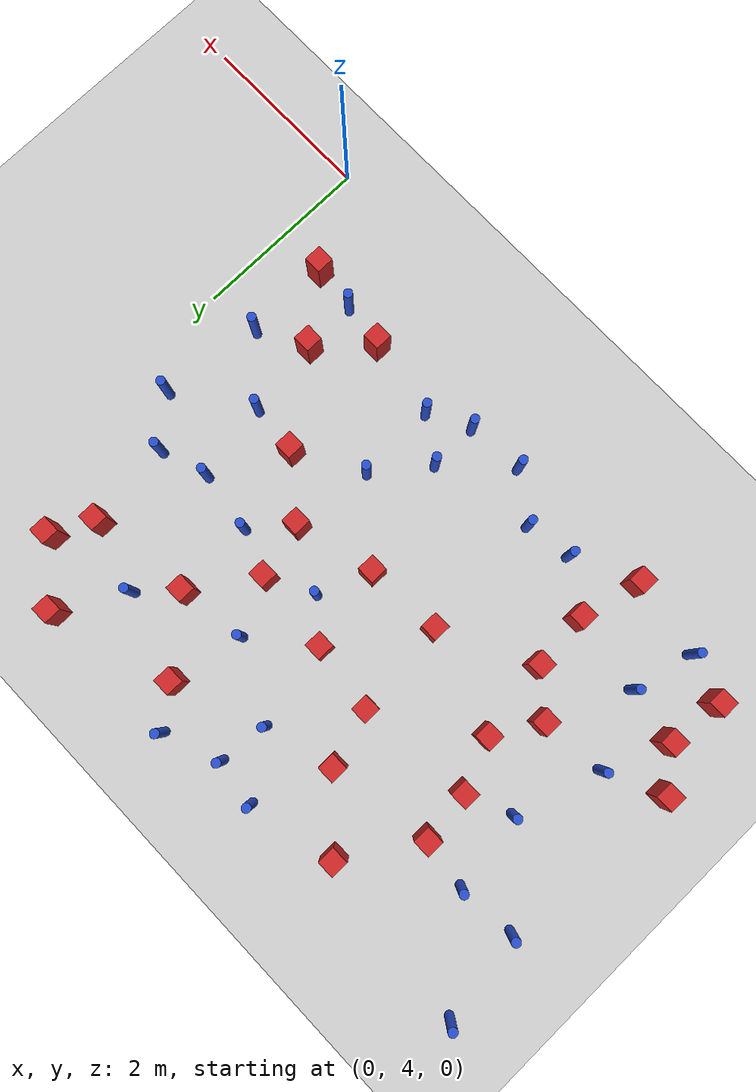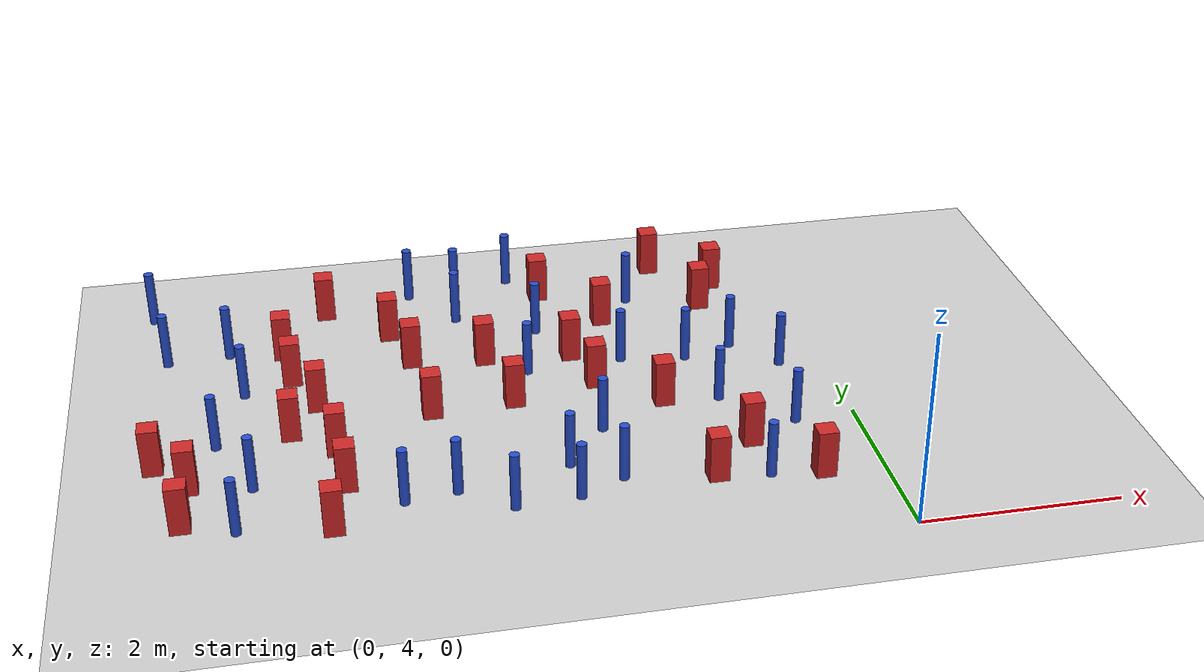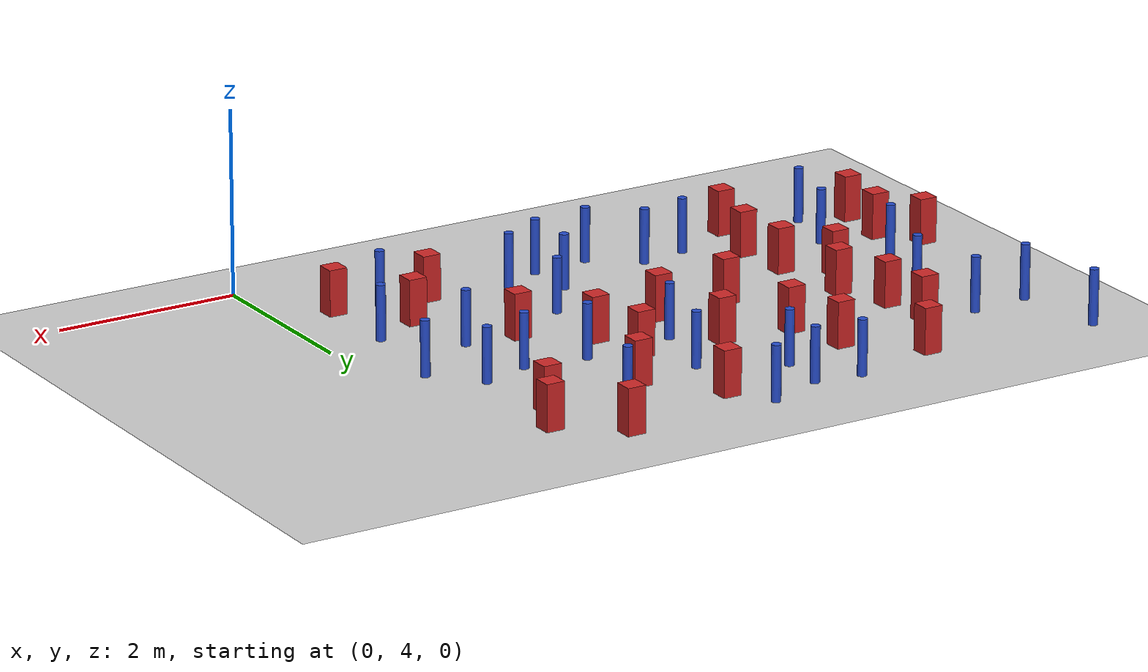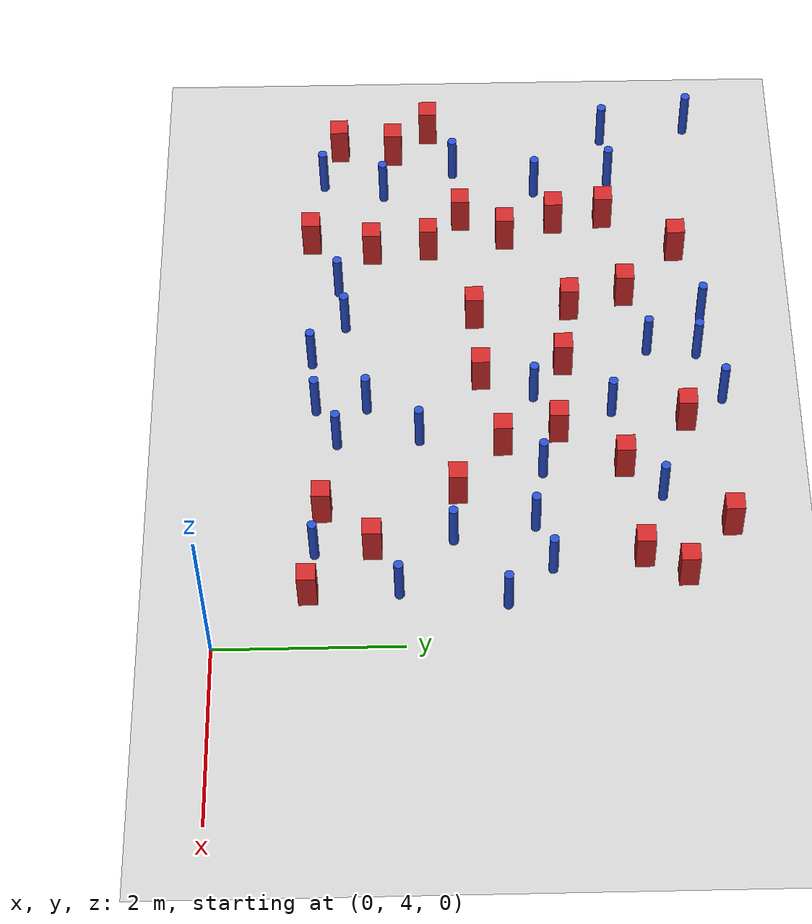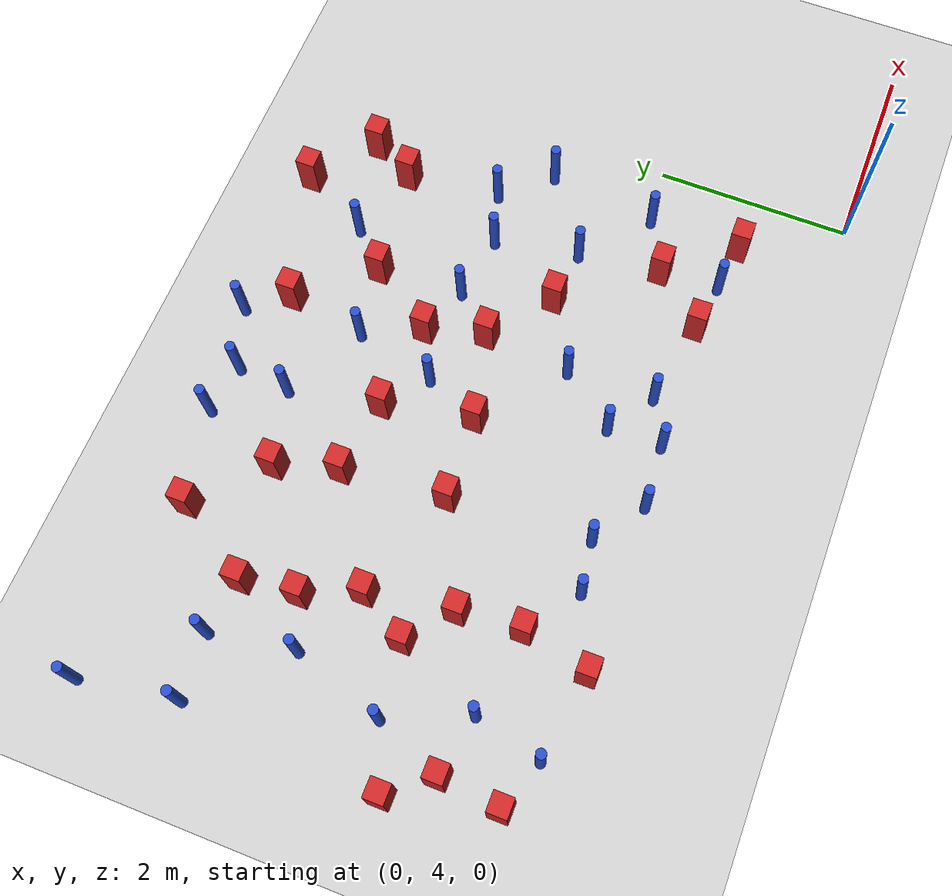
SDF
<sdf version="1.6">
 <world name="default">
  <model name="ground_plane">
   <static>1</static>
   <link name="link">
    <collision name="collision">
     <geometry><plane><normal>0 0 1</normal><size>100 100</size></plane></geometry>
     <surface><friction><ode><mu>100</mu><mu2>50</mu2></ode></friction></surface>
    </collision>
    <visual name="visual">
     <cast_shadows>0</cast_shadows>
     <geometry><plane><normal>0 0 1</normal><size>100 100</size></plane></geometry>
     <material>
      <ambient>1.0 1.0 1.0 1.0</ambient>
      <diffuse>0.8 0.8 0.8 1.0</diffuse>
      <specular>0.01 0.01 0.01 1.000000</specular>
     </material>
    </visual>
   </link>
  </model>
  <model name="pole_obstacle5">
   <static>true</static>
   <pose>-2.55545576184 6.15539351337 7.38925637345e-09 -8.47170692798e-08 1.24976765033e-08 -1.74513093019e-07</pose>
   <link name="link">
    <pose>0 0 0.3 0 -0 0</pose>
    <inertial>
     <mass>1</mass>
     <inertia><ixx>0.145833</ixx><ixy>0</ixy><ixz>0</ixz><iyy>0.145833</iyy><iyz>0</iyz><izz>0.125</izz></inertia>
    </inertial>
    <collision name="collision">
     <geometry><cylinder><radius>0.05</radius><length>.6</length></cylinder></geometry>
    </collision>
    <visual name="visual">
     <geometry><cylinder><radius>0.05</radius><length>.6</length></cylinder></geometry>
     <material>
      <script><name>Gazebo/Blue</name><uri>file://media/materials/scripts/gazebo.material</uri></script>
     </material>
    </visual>
   </link>
  </model>
  <model name="square_post_obstacle8">
   <static>true</static>
   <pose>-2.62218615921 7.6551377625 1.91545236811e-07 -7.35059704564e-06 1.12565212e-07 2.39332434364e-05</pose>
   <link name="link">
    <pose>0 0 0.25 0 -0 0</pose>
    <inertial>
     <mass>100</mass>
     <inertia>
      <ixx>0.166667</ixx>
      <ixy>0</ixy>
      <ixz>0</ixz>
      <iyy>0.166667</iyy>
      <iyz>0</iyz>
      <izz>0.166667</izz>
     </inertia>
    </inertial>
    <collision name="collision"><geometry><box><size>.2 .2 .5</size></box></geometry></collision>
    <visual name="visual">
     <geometry><box><size>.2 .2 .5</size></box></geometry>
     <material>
      <script><name>Gazebo/Red</name><uri>file://media/materials/scripts/gazebo.material</uri></script>
     </material>
    </visual>
   </link>
  </model>
  <model name="pole_obstacle16">
   <static>true</static>
   <pose>-1.78811014699 8.73780158 7.38925637345e-09 -8.47170692798e-08 1.24976764881e-08 -1.74513093027e-07</pose>
   <link name="link">
    <pose>0 0 0.3 0 -0 0</pose>
    <inertial>
     <mass>1</mass>
     <inertia><ixx>0.145833</ixx><ixy>0</ixy><ixz>0</ixz><iyy>0.145833</iyy><iyz>0</iyz><izz>0.125</izz></inertia>
    </inertial>
    <collision name="collision">
     <geometry><cylinder><radius>0.05</radius><length>.6</length></cylinder></geometry>
    </collision>
    <visual name="visual">
     <geometry><cylinder><radius>0.05</radius><length>.6</length></cylinder></geometry>
     <material>
      <script><name>Gazebo/Blue</name><uri>file://media/materials/scripts/gazebo.material</uri></script>
     </material>
    </visual>
   </link>
  </model>
  <model name="square_post_obstacle14">
   <static>true</static>
   <pose>-4.4794146209 8.45498827189 1.91545236811e-07 -7.35059704564e-06 1.12565212e-07 2.39332434364e-05</pose>
   <link name="link">
    <pose>0 0 0.25 0 -0 0</pose>
    <inertial>
     <mass>100</mass>
     <inertia>
      <ixx>0.166667</ixx>
      <ixy>0</ixy>
      <ixz>0</ixz>
      <iyy>0.166667</iyy>
      <iyz>0</iyz>
      <izz>0.166667</izz>
     </inertia>
    </inertial>
    <collision name="collision"><geometry><box><size>.2 .2 .5</size></box></geometry></collision>
    <visual name="visual">
     <geometry><box><size>.2 .2 .5</size></box></geometry>
     <material>
      <script><name>Gazebo/Red</name><uri>file://media/materials/scripts/gazebo.material</uri></script>
     </material>
    </visual>
   </link>
  </model>
  <model name="pole_obstacle19">
   <static>true</static>
   <pose>-2.98874472671 5.58375871275 7.38925637345e-09 -8.47170692798e-08 1.24976765033e-08 -1.74513093019e-07</pose>
   <link name="link">
    <pose>0 0 0.3 0 -0 0</pose>
    <inertial>
     <mass>1</mass>
     <inertia><ixx>0.145833</ixx><ixy>0</ixy><ixz>0</ixz><iyy>0.145833</iyy><iyz>0</iyz><izz>0.125</izz></inertia>
    </inertial>
    <collision name="collision">
     <geometry><cylinder><radius>0.05</radius><length>.6</length></cylinder></geometry>
    </collision>
    <visual name="visual">
     <geometry><cylinder><radius>0.05</radius><length>.6</length></cylinder></geometry>
     <material>
      <script><name>Gazebo/Blue</name><uri>file://media/materials/scripts/gazebo.material</uri></script>
     </material>
    </visual>
   </link>
  </model>
  <model name="square_post_obstacle17">
   <static>true</static>
   <pose>-2.7513410961 9.04286825855 1.91545236811e-07 -7.35059704564e-06 1.12565212e-07 2.39332434364e-05</pose>
   <link name="link">
    <pose>0 0 0.25 0 -0 0</pose>
    <inertial>
     <mass>100</mass>
     <inertia>
      <ixx>0.166667</ixx>
      <ixy>0</ixy>
      <ixz>0</ixz>
      <iyy>0.166667</iyy>
      <iyz>0</iyz>
      <izz>0.166667</izz>
     </inertia>
    </inertial>
    <collision name="collision"><geometry><box><size>.2 .2 .5</size></box></geometry></collision>
    <visual name="visual">
     <geometry><box><size>.2 .2 .5</size></box></geometry>
     <material>
      <script><name>Gazebo/Red</name><uri>file://media/materials/scripts/gazebo.material</uri></script>
     </material>
    </visual>
   </link>
  </model>
  <model name="square_post_obstacle18">
   <static>true</static>
   <pose>-5.13826582944 5.63900219698 1.91545236811e-07 -7.35059704564e-06 1.12565212e-07 2.39332434364e-05</pose>
   <link name="link">
    <pose>0 0 0.25 0 -0 0</pose>
    <inertial>
     <mass>100</mass>
     <inertia>
      <ixx>0.166667</ixx>
      <ixy>0</ixy>
      <ixz>0</ixz>
      <iyy>0.166667</iyy>
      <iyz>0</iyz>
      <izz>0.166667</izz>
     </inertia>
    </inertial>
    <collision name="collision"><geometry><box><size>.2 .2 .5</size></box></geometry></collision>
    <visual name="visual">
     <geometry><box><size>.2 .2 .5</size></box></geometry>
     <material>
      <script><name>Gazebo/Red</name><uri>file://media/materials/scripts/gazebo.material</uri></script>
     </material>
    </visual>
   </link>
  </model>
  <model name="pole_obstacle27">
   <static>true</static>
   <pose>-1.27246893069 6.50398572735 7.38925637345e-09 -8.47170692799e-08 1.24976765033e-08 -1.74513093018e-07</pose>
   <link name="link">
    <pose>0 0 0.3 0 -0 0</pose>
    <inertial>
     <mass>1</mass>
     <inertia><ixx>0.145833</ixx><ixy>0</ixy><ixz>0</ixz><iyy>0.145833</iyy><iyz>0</iyz><izz>0.125</izz></inertia>
    </inertial>
    <collision name="collision">
     <geometry><cylinder><radius>0.05</radius><length>.6</length></cylinder></geometry>
    </collision>
    <visual name="visual">
     <geometry><cylinder><radius>0.05</radius><length>.6</length></cylinder></geometry>
     <material>
      <script><name>Gazebo/Blue</name><uri>file://media/materials/scripts/gazebo.material</uri></script>
     </material>
    </visual>
   </link>
  </model>
  <model name="pole_obstacle28">
   <static>true</static>
   <pose>-3.72194788245 8.67434361622 7.38925637345e-09 -8.47170692793e-08 1.24976764408e-08 -1.74513093041e-07</pose>
   <link name="link">
    <pose>0 0 0.3 0 -0 0</pose>
    <inertial>
     <mass>1</mass>
     <inertia><ixx>0.145833</ixx><ixy>0</ixy><ixz>0</ixz><iyy>0.145833</iyy><iyz>0</iyz><izz>0.125</izz></inertia>
    </inertial>
    <collision name="collision">
     <geometry><cylinder><radius>0.05</radius><length>.6</length></cylinder></geometry>
    </collision>
    <visual name="visual">
     <geometry><cylinder><radius>0.05</radius><length>.6</length></cylinder></geometry>
     <material>
      <script><name>Gazebo/Blue</name><uri>file://media/materials/scripts/gazebo.material</uri></script>
     </material>
    </visual>
   </link>
  </model>
  <model name="pole_obstacle37">
   <static>true</static>
   <pose>-0.47269736567 7.05888975246 7.38925637345e-09 -8.471706928e-08 1.24976765062e-08 -1.74513093016e-07</pose>
   <link name="link">
    <pose>0 0 0.3 0 -0 0</pose>
    <inertial>
     <mass>1</mass>
     <inertia><ixx>0.145833</ixx><ixy>0</ixy><ixz>0</ixz><iyy>0.145833</iyy><iyz>0</iyz><izz>0.125</izz></inertia>
    </inertial>
    <collision name="collision">
     <geometry><cylinder><radius>0.05</radius><length>.6</length></cylinder></geometry>
    </collision>
    <visual name="visual">
     <geometry><cylinder><radius>0.05</radius><length>.6</length></cylinder></geometry>
     <material>
      <script><name>Gazebo/Blue</name><uri>file://media/materials/scripts/gazebo.material</uri></script>
     </material>
    </visual>
   </link>
  </model>
  <model name="square_post_obstacle34">
   <static>true</static>
   <pose>-6.62254886877 5.87984044877 1.91545236811e-07 -7.35059704564e-06 1.12565212e-07 2.39332434364e-05</pose>
   <link name="link">
    <pose>0 0 0.25 0 -0 0</pose>
    <inertial>
     <mass>100</mass>
     <inertia>
      <ixx>0.166667</ixx>
      <ixy>0</ixy>
      <ixz>0</ixz>
      <iyy>0.166667</iyy>
      <iyz>0</iyz>
      <izz>0.166667</izz>
     </inertia>
    </inertial>
    <collision name="collision"><geometry><box><size>.2 .2 .5</size></box></geometry></collision>
    <visual name="visual">
     <geometry><box><size>.2 .2 .5</size></box></geometry>
     <material>
      <script><name>Gazebo/Red</name><uri>file://media/materials/scripts/gazebo.material</uri></script>
     </material>
    </visual>
   </link>
  </model>
  <model name="square_post_obstacle42">
   <static>true</static>
   <pose>-0.776643781165 8.93840910546 1.91545236811e-07 -7.35059704564e-06 1.12565212e-07 2.39332434364e-05</pose>
   <link name="link">
    <pose>0 0 0.25 0 -0 0</pose>
    <inertial>
     <mass>100</mass>
     <inertia>
      <ixx>0.166667</ixx>
      <ixy>0</ixy>
      <ixz>0</ixz>
      <iyy>0.166667</iyy>
      <iyz>0</iyz>
      <izz>0.166667</izz>
     </inertia>
    </inertial>
    <collision name="collision"><geometry><box><size>.2 .2 .5</size></box></geometry></collision>
    <visual name="visual">
     <geometry><box><size>.2 .2 .5</size></box></geometry>
     <material>
      <script><name>Gazebo/Red</name><uri>file://media/materials/scripts/gazebo.material</uri></script>
     </material>
    </visual>
   </link>
  </model>
  <model name="square_post_obstacle54">
   <static>true</static>
   <pose>-1.15946356491 5.65353927408 1.91545236811e-07 -7.35059704564e-06 1.12565212e-07 2.39332434364e-05</pose>
   <link name="link">
    <pose>0 0 0.25 0 -0 0</pose>
    <inertial>
     <mass>100</mass>
     <inertia>
      <ixx>0.166667</ixx>
      <ixy>0</ixy>
      <ixz>0</ixz>
      <iyy>0.166667</iyy>
      <iyz>0</iyz>
      <izz>0.166667</izz>
     </inertia>
    </inertial>
    <collision name="collision"><geometry><box><size>.2 .2 .5</size></box></geometry></collision>
    <visual name="visual">
     <geometry><box><size>.2 .2 .5</size></box></geometry>
     <material>
      <script><name>Gazebo/Red</name><uri>file://media/materials/scripts/gazebo.material</uri></script>
     </material>
    </visual>
   </link>
  </model>
  <model name="pole_obstacle71">
   <static>true</static>
   <pose>-2.10656284655 7.4703882636 7.38925637345e-09 -8.47170692798e-08 1.24976765033e-08 -1.74513093019e-07</pose>
   <link name="link">
    <pose>0 0 0.3 0 -0 0</pose>
    <inertial>
     <mass>1</mass>
     <inertia><ixx>0.145833</ixx><ixy>0</ixy><ixz>0</ixz><iyy>0.145833</iyy><iyz>0</iyz><izz>0.125</izz></inertia>
    </inertial>
    <collision name="collision">
     <geometry><cylinder><radius>0.05</radius><length>.6</length></cylinder></geometry>
    </collision>
    <visual name="visual">
     <geometry><cylinder><radius>0.05</radius><length>.6</length></cylinder></geometry>
     <material>
      <script><name>Gazebo/Blue</name><uri>file://media/materials/scripts/gazebo.material</uri></script>
     </material>
    </visual>
   </link>
  </model>
  <model name="square_post_obstacle64">
   <static>true</static>
   <pose>-5.18899559556 6.27664983305 1.91545236811e-07 -7.35059704564e-06 1.12565212e-07 2.39332434364e-05</pose>
   <link name="link">
    <pose>0 0 0.25 0 -0 0</pose>
    <inertial>
     <mass>100</mass>
     <inertia>
      <ixx>0.166667</ixx>
      <ixy>0</ixy>
      <ixz>0</ixz>
      <iyy>0.166667</iyy>
      <iyz>0</iyz>
      <izz>0.166667</izz>
     </inertia>
    </inertial>
    <collision name="collision"><geometry><box><size>.2 .2 .5</size></box></geometry></collision>
    <visual name="visual">
     <geometry><box><size>.2 .2 .5</size></box></geometry>
     <material>
      <script><name>Gazebo/Red</name><uri>file://media/materials/scripts/gazebo.material</uri></script>
     </material>
    </visual>
   </link>
  </model>
  <model name="pole_obstacle75">
   <static>true</static>
   <pose>-6.01697473553 5.76810049387 7.38925637345e-09 -8.47170692796e-08 1.24976764786e-08 -1.74513093032e-07</pose>
   <link name="link">
    <pose>0 0 0.3 0 -0 0</pose>
    <inertial>
     <mass>1</mass>
     <inertia><ixx>0.145833</ixx><ixy>0</ixy><ixz>0</ixz><iyy>0.145833</iyy><iyz>0</iyz><izz>0.125</izz></inertia>
    </inertial>
    <collision name="collision">
     <geometry><cylinder><radius>0.05</radius><length>.6</length></cylinder></geometry>
    </collision>
    <visual name="visual">
     <geometry><cylinder><radius>0.05</radius><length>.6</length></cylinder></geometry>
     <material>
      <script><name>Gazebo/Blue</name><uri>file://media/materials/scripts/gazebo.material</uri></script>
     </material>
    </visual>
   </link>
  </model>
  <model name="pole_obstacle83">
   <static>true</static>
   <pose>-0.898464027267 7.53740164925 7.38925637345e-09 -8.471706928e-08 1.24976765086e-08 -1.74513093015e-07</pose>
   <link name="link">
    <pose>0 0 0.3 0 -0 0</pose>
    <inertial>
     <mass>1</mass>
     <inertia><ixx>0.145833</ixx><ixy>0</ixy><ixz>0</ixz><iyy>0.145833</iyy><iyz>0</iyz><izz>0.125</izz></inertia>
    </inertial>
    <collision name="collision">
     <geometry><cylinder><radius>0.05</radius><length>.6</length></cylinder></geometry>
    </collision>
    <visual name="visual">
     <geometry><cylinder><radius>0.05</radius><length>.6</length></cylinder></geometry>
     <material>
      <script><name>Gazebo/Blue</name><uri>file://media/materials/scripts/gazebo.material</uri></script>
     </material>
    </visual>
   </link>
  </model>
  <model name="square_post_obstacle81">
   <static>true</static>
   <pose>-5.30343954569 4.95477423115 1.91545236811e-07 -7.35059704564e-06 1.12565212e-07 2.39332434364e-05</pose>
   <link name="link">
    <pose>0 0 0.25 0 -0 0</pose>
    <inertial>
     <mass>100</mass>
     <inertia>
      <ixx>0.166667</ixx>
      <ixy>0</ixy>
      <ixz>0</ixz>
      <iyy>0.166667</iyy>
      <iyz>0</iyz>
      <izz>0.166667</izz>
     </inertia>
    </inertial>
    <collision name="collision"><geometry><box><size>.2 .2 .5</size></box></geometry></collision>
    <visual name="visual">
     <geometry><box><size>.2 .2 .5</size></box></geometry>
     <material>
      <script><name>Gazebo/Red</name><uri>file://media/materials/scripts/gazebo.material</uri></script>
     </material>
    </visual>
   </link>
  </model>
  <model name="square_post_obstacle86">
   <static>true</static>
   <pose>-6.68818618537 5.26182978224 1.91545236811e-07 -7.35059704564e-06 1.12565212e-07 2.39332434364e-05</pose>
   <link name="link">
    <pose>0 0 0.25 0 -0 0</pose>
    <inertial>
     <mass>100</mass>
     <inertia>
      <ixx>0.166667</ixx>
      <ixy>0</ixy>
      <ixz>0</ixz>
      <iyy>0.166667</iyy>
      <iyz>0</iyz>
      <izz>0.166667</izz>
     </inertia>
    </inertial>
    <collision name="collision"><geometry><box><size>.2 .2 .5</size></box></geometry></collision>
    <visual name="visual">
     <geometry><box><size>.2 .2 .5</size></box></geometry>
     <material>
      <script><name>Gazebo/Red</name><uri>file://media/materials/scripts/gazebo.material</uri></script>
     </material>
    </visual>
   </link>
  </model>
  <model name="pole_obstacle95">
   <static>true</static>
   <pose>-4.11127553185 5.3435393802 7.38925637345e-09 -8.47170692796e-08 1.24976764786e-08 -1.74513093032e-07</pose>
   <link name="link">
    <pose>0 0 0.3 0 -0 0</pose>
    <inertial>
     <mass>1</mass>
     <inertia><ixx>0.145833</ixx><ixy>0</ixy><ixz>0</ixz><iyy>0.145833</iyy><iyz>0</iyz><izz>0.125</izz></inertia>
    </inertial>
    <collision name="collision">
     <geometry><cylinder><radius>0.05</radius><length>.6</length></cylinder></geometry>
    </collision>
    <visual name="visual">
     <geometry><cylinder><radius>0.05</radius><length>.6</length></cylinder></geometry>
     <material>
      <script><name>Gazebo/Blue</name><uri>file://media/materials/scripts/gazebo.material</uri></script>
     </material>
    </visual>
   </link>
  </model>
  <model name="square_post_obstacle88">
   <static>true</static>
   <pose>-3.53034056066 7.73528854244 1.91545236811e-07 -7.35059704564e-06 1.12565212e-07 2.39332434364e-05</pose>
   <link name="link">
    <pose>0 0 0.25 0 -0 0</pose>
    <inertial>
     <mass>100</mass>
     <inertia>
      <ixx>0.166667</ixx>
      <ixy>0</ixy>
      <ixz>0</ixz>
      <iyy>0.166667</iyy>
      <iyz>0</iyz>
      <izz>0.166667</izz>
     </inertia>
    </inertial>
    <collision name="collision"><geometry><box><size>.2 .2 .5</size></box></geometry></collision>
    <visual name="visual">
     <geometry><box><size>.2 .2 .5</size></box></geometry>
     <material>
      <script><name>Gazebo/Red</name><uri>file://media/materials/scripts/gazebo.material</uri></script>
     </material>
    </visual>
   </link>
  </model>
  <model name="pole_obstacle96">
   <static>true</static>
   <pose>-4.62385473737 5.26404664952 7.38925637345e-09 -8.47170692796e-08 1.24976764786e-08 -1.74513093032e-07</pose>
   <link name="link">
    <pose>0 0 0.3 0 -0 0</pose>
    <inertial>
     <mass>1</mass>
     <inertia><ixx>0.145833</ixx><ixy>0</ixy><ixz>0</ixz><iyy>0.145833</iyy><iyz>0</iyz><izz>0.125</izz></inertia>
    </inertial>
    <collision name="collision">
     <geometry><cylinder><radius>0.05</radius><length>.6</length></cylinder></geometry>
    </collision>
    <visual name="visual">
     <geometry><cylinder><radius>0.05</radius><length>.6</length></cylinder></geometry>
     <material>
      <script><name>Gazebo/Blue</name><uri>file://media/materials/scripts/gazebo.material</uri></script>
     </material>
    </visual>
   </link>
  </model>
  <model name="square_post_obstacle93">
   <static>true</static>
   <pose>-4.19537156462 6.77649679344 1.91545236811e-07 -7.35059704564e-06 1.12565212e-07 2.39332434364e-05</pose>
   <link name="link">
    <pose>0 0 0.25 0 -0 0</pose>
    <inertial>
     <mass>100</mass>
     <inertia>
      <ixx>0.166667</ixx>
      <ixy>0</ixy>
      <ixz>0</ixz>
      <iyy>0.166667</iyy>
      <iyz>0</iyz>
      <izz>0.166667</izz>
     </inertia>
    </inertial>
    <collision name="collision"><geometry><box><size>.2 .2 .5</size></box></geometry></collision>
    <visual name="visual">
     <geometry><box><size>.2 .2 .5</size></box></geometry>
     <material>
      <script><name>Gazebo/Red</name><uri>file://media/materials/scripts/gazebo.material</uri></script>
     </material>
    </visual>
   </link>
  </model>
  <model name="square_post_obstacle97">
   <static>true</static>
   <pose>-1.63804682211 5.11824011782 1.91545236811e-07 -7.35059704564e-06 1.12565212e-07 2.39332434364e-05</pose>
   <link name="link">
    <pose>0 0 0.25 0 -0 0</pose>
    <inertial>
     <mass>100</mass>
     <inertia>
      <ixx>0.166667</ixx>
      <ixy>0</ixy>
      <ixz>0</ixz>
      <iyy>0.166667</iyy>
      <iyz>0</iyz>
      <izz>0.166667</izz>
     </inertia>
    </inertial>
    <collision name="collision"><geometry><box><size>.2 .2 .5</size></box></geometry></collision>
    <visual name="visual">
     <geometry><box><size>.2 .2 .5</size></box></geometry>
     <material>
      <script><name>Gazebo/Red</name><uri>file://media/materials/scripts/gazebo.material</uri></script>
     </material>
    </visual>
   </link>
  </model>
  <model name="pole_obstacle105">
   <static>true</static>
   <pose>-1.42755189406 7.37146292899 7.38925637345e-09 -8.47170692799e-08 1.24976765033e-08 -1.74513093018e-07</pose>
   <link name="link">
    <pose>0 0 0.3 0 -0 0</pose>
    <inertial>
     <mass>1</mass>
     <inertia><ixx>0.145833</ixx><ixy>0</ixy><ixz>0</ixz><iyy>0.145833</iyy><iyz>0</iyz><izz>0.125</izz></inertia>
    </inertial>
    <collision name="collision">
     <geometry><cylinder><radius>0.05</radius><length>.6</length></cylinder></geometry>
    </collision>
    <visual name="visual">
     <geometry><cylinder><radius>0.05</radius><length>.6</length></cylinder></geometry>
     <material>
      <script><name>Gazebo/Blue</name><uri>file://media/materials/scripts/gazebo.material</uri></script>
     </material>
    </visual>
   </link>
  </model>
  <model name="pole_obstacle107">
   <static>true</static>
   <pose>-6.35165510101 6.5662025329 7.38925637345e-09 -8.47170692796e-08 1.24976764786e-08 -1.74513093032e-07</pose>
   <link name="link">
    <pose>0 0 0.3 0 -0 0</pose>
    <inertial>
     <mass>1</mass>
     <inertia><ixx>0.145833</ixx><ixy>0</ixy><ixz>0</ixz><iyy>0.145833</iyy><iyz>0</iyz><izz>0.125</izz></inertia>
    </inertial>
    <collision name="collision">
     <geometry><cylinder><radius>0.05</radius><length>.6</length></cylinder></geometry>
    </collision>
    <visual name="visual">
     <geometry><cylinder><radius>0.05</radius><length>.6</length></cylinder></geometry>
     <material>
      <script><name>Gazebo/Blue</name><uri>file://media/materials/scripts/gazebo.material</uri></script>
     </material>
    </visual>
   </link>
  </model>
  <model name="pole_obstacle111">
   <static>true</static>
   <pose>-6.05027816924 7.49927023329 7.38925637345e-09 -8.47170692796e-08 1.24976764786e-08 -1.74513093032e-07</pose>
   <link name="link">
    <pose>0 0 0.3 0 -0 0</pose>
    <inertial>
     <mass>1</mass>
     <inertia><ixx>0.145833</ixx><ixy>0</ixy><ixz>0</ixz><iyy>0.145833</iyy><iyz>0</iyz><izz>0.125</izz></inertia>
    </inertial>
    <collision name="collision">
     <geometry><cylinder><radius>0.05</radius><length>.6</length></cylinder></geometry>
    </collision>
    <visual name="visual">
     <geometry><cylinder><radius>0.05</radius><length>.6</length></cylinder></geometry>
     <material>
      <script><name>Gazebo/Blue</name><uri>file://media/materials/scripts/gazebo.material</uri></script>
     </material>
    </visual>
   </link>
  </model>
  <model name="square_post_obstacle106">
   <static>true</static>
   <pose>-3.34620056487 6.83059913653 1.91545236811e-07 -7.35059704564e-06 1.12565212e-07 2.39332434364e-05</pose>
   <link name="link">
    <pose>0 0 0.25 0 -0 0</pose>
    <inertial>
     <mass>100</mass>
     <inertia>
      <ixx>0.166667</ixx>
      <ixy>0</ixy>
      <ixz>0</ixz>
      <iyy>0.166667</iyy>
      <iyz>0</iyz>
      <izz>0.166667</izz>
     </inertia>
    </inertial>
    <collision name="collision"><geometry><box><size>.2 .2 .5</size></box></geometry></collision>
    <visual name="visual">
     <geometry><box><size>.2 .2 .5</size></box></geometry>
     <material>
      <script><name>Gazebo/Red</name><uri>file://media/materials/scripts/gazebo.material</uri></script>
     </material>
    </visual>
   </link>
  </model>
  <model name="pole_obstacle112">
   <static>true</static>
   <pose>-2.52203266798 5.26424522491 7.38925637345e-09 -8.47170692798e-08 1.24976765033e-08 -1.74513093019e-07</pose>
   <link name="link">
    <pose>0 0 0.3 0 -0 0</pose>
    <inertial>
     <mass>1</mass>
     <inertia><ixx>0.145833</ixx><ixy>0</ixy><ixz>0</ixz><iyy>0.145833</iyy><iyz>0</iyz><izz>0.125</izz></inertia>
    </inertial>
    <collision name="collision">
     <geometry><cylinder><radius>0.05</radius><length>.6</length></cylinder></geometry>
    </collision>
    <visual name="visual">
     <geometry><cylinder><radius>0.05</radius><length>.6</length></cylinder></geometry>
     <material>
      <script><name>Gazebo/Blue</name><uri>file://media/materials/scripts/gazebo.material</uri></script>
     </material>
    </visual>
   </link>
  </model>
  <model name="square_post_obstacle110">
   <static>true</static>
   <pose>-2.46231940316 7.0500652812 1.91545236811e-07 -7.35059704564e-06 1.12565212e-07 2.39332434364e-05</pose>
   <link name="link">
    <pose>0 0 0.25 0 -0 0</pose>
    <inertial>
     <mass>100</mass>
     <inertia>
      <ixx>0.166667</ixx>
      <ixy>0</ixy>
      <ixz>0</ixz>
      <iyy>0.166667</iyy>
      <iyz>0</iyz>
      <izz>0.166667</izz>
     </inertia>
    </inertial>
    <collision name="collision"><geometry><box><size>.2 .2 .5</size></box></geometry></collision>
    <visual name="visual">
     <geometry><box><size>.2 .2 .5</size></box></geometry>
     <material>
      <script><name>Gazebo/Red</name><uri>file://media/materials/scripts/gazebo.material</uri></script>
     </material>
    </visual>
   </link>
  </model>
  <model name="square_post_obstacle115">
   <static>true</static>
   <pose>-1.38993484544 9.44258703254 1.91545236811e-07 -7.35059704564e-06 1.12565212e-07 2.39332434364e-05</pose>
   <link name="link">
    <pose>0 0 0.25 0 -0 0</pose>
    <inertial>
     <mass>100</mass>
     <inertia>
      <ixx>0.166667</ixx>
      <ixy>0</ixy>
      <ixz>0</ixz>
      <iyy>0.166667</iyy>
      <iyz>0</iyz>
      <izz>0.166667</izz>
     </inertia>
    </inertial>
    <collision name="collision"><geometry><box><size>.2 .2 .5</size></box></geometry></collision>
    <visual name="visual">
     <geometry><box><size>.2 .2 .5</size></box></geometry>
     <material>
      <script><name>Gazebo/Red</name><uri>file://media/materials/scripts/gazebo.material</uri></script>
     </material>
    </visual>
   </link>
  </model>
  <model name="pole_obstacle116">
   <static>true</static>
   <pose>-6.18584249278 8.35293936064 7.38925637345e-09 -8.471706928e-08 1.24976765081e-08 -1.74513093015e-07</pose>
   <link name="link">
    <pose>0 0 0.3 0 -0 0</pose>
    <inertial>
     <mass>1</mass>
     <inertia><ixx>0.145833</ixx><ixy>0</ixy><ixz>0</ixz><iyy>0.145833</iyy><iyz>0</iyz><izz>0.125</izz></inertia>
    </inertial>
    <collision name="collision">
     <geometry><cylinder><radius>0.05</radius><length>.6</length></cylinder></geometry>
    </collision>
    <visual name="visual">
     <geometry><cylinder><radius>0.05</radius><length>.6</length></cylinder></geometry>
     <material>
      <script><name>Gazebo/Blue</name><uri>file://media/materials/scripts/gazebo.material</uri></script>
     </material>
    </visual>
   </link>
  </model>
  <model name="pole_obstacle128">
   <static>true</static>
   <pose>-2.89749207033 8.24454831575 7.38925637345e-09 -8.47170692793e-08 1.24976764408e-08 -1.74513093041e-07</pose>
   <link name="link">
    <pose>0 0 0.3 0 -0 0</pose>
    <inertial>
     <mass>1</mass>
     <inertia><ixx>0.145833</ixx><ixy>0</ixy><ixz>0</ixz><iyy>0.145833</iyy><iyz>0</iyz><izz>0.125</izz></inertia>
    </inertial>
    <collision name="collision">
     <geometry><cylinder><radius>0.05</radius><length>.6</length></cylinder></geometry>
    </collision>
    <visual name="visual">
     <geometry><cylinder><radius>0.05</radius><length>.6</length></cylinder></geometry>
     <material>
      <script><name>Gazebo/Blue</name><uri>file://media/materials/scripts/gazebo.material</uri></script>
     </material>
    </visual>
   </link>
  </model>
  <model name="square_post_obstacle129">
   <static>true</static>
   <pose>-0.616208081796 4.98433947501 1.91545236811e-07 -7.35059704564e-06 1.12565212e-07 2.39332434364e-05</pose>
   <link name="link">
    <pose>0 0 0.25 0 -0 0</pose>
    <inertial>
     <mass>100</mass>
     <inertia>
      <ixx>0.166667</ixx>
      <ixy>0</ixy>
      <ixz>0</ixz>
      <iyy>0.166667</iyy>
      <iyz>0</iyz>
      <izz>0.166667</izz>
     </inertia>
    </inertial>
    <collision name="collision"><geometry><box><size>.2 .2 .5</size></box></geometry></collision>
    <visual name="visual">
     <geometry><box><size>.2 .2 .5</size></box></geometry>
     <material>
      <script><name>Gazebo/Red</name><uri>file://media/materials/scripts/gazebo.material</uri></script>
     </material>
    </visual>
   </link>
  </model>
  <model name="square_post_obstacle133">
   <static>true</static>
   <pose>-5.5540985887 7.69949541297 1.91545236811e-07 -7.35059704564e-06 1.12565212e-07 2.39332434364e-05</pose>
   <link name="link">
    <pose>0 0 0.25 0 -0 0</pose>
    <inertial>
     <mass>100</mass>
     <inertia>
      <ixx>0.166667</ixx>
      <ixy>0</ixy>
      <ixz>0</ixz>
      <iyy>0.166667</iyy>
      <iyz>0</iyz>
      <izz>0.166667</izz>
     </inertia>
    </inertial>
    <collision name="collision"><geometry><box><size>.2 .2 .5</size></box></geometry></collision>
    <visual name="visual">
     <geometry><box><size>.2 .2 .5</size></box></geometry>
     <material>
      <script><name>Gazebo/Red</name><uri>file://media/materials/scripts/gazebo.material</uri></script>
     </material>
    </visual>
   </link>
  </model>
  <model name="pole_obstacle137">
   <static>true</static>
   <pose>-4.17629568329 9.29689501049 7.38925637345e-09 -8.471706928e-08 1.24976765081e-08 -1.74513093015e-07</pose>
   <link name="link">
    <pose>0 0 0.3 0 -0 0</pose>
    <inertial>
     <mass>1</mass>
     <inertia><ixx>0.145833</ixx><ixy>0</ixy><ixz>0</ixz><iyy>0.145833</iyy><iyz>0</iyz><izz>0.125</izz></inertia>
    </inertial>
    <collision name="collision">
     <geometry><cylinder><radius>0.05</radius><length>.6</length></cylinder></geometry>
    </collision>
    <visual name="visual">
     <geometry><cylinder><radius>0.05</radius><length>.6</length></cylinder></geometry>
     <material>
      <script><name>Gazebo/Blue</name><uri>file://media/materials/scripts/gazebo.material</uri></script>
     </material>
    </visual>
   </link>
  </model>
  <model name="pole_obstacle155">
   <static>true</static>
   <pose>-0.619624631718 5.93226306926 7.38925637345e-09 -8.471706928e-08 1.24976765086e-08 -1.74513093015e-07</pose>
   <link name="link">
    <pose>0 0 0.3 0 -0 0</pose>
    <inertial>
     <mass>1</mass>
     <inertia><ixx>0.145833</ixx><ixy>0</ixy><ixz>0</ixz><iyy>0.145833</iyy><iyz>0</iyz><izz>0.125</izz></inertia>
    </inertial>
    <collision name="collision">
     <geometry><cylinder><radius>0.05</radius><length>.6</length></cylinder></geometry>
    </collision>
    <visual name="visual">
     <geometry><cylinder><radius>0.05</radius><length>.6</length></cylinder></geometry>
     <material>
      <script><name>Gazebo/Blue</name><uri>file://media/materials/scripts/gazebo.material</uri></script>
     </material>
    </visual>
   </link>
  </model>
  <model name="pole_obstacle157">
   <static>true</static>
   <pose>-6.83243758745 8.30358481471 7.38925637345e-09 -8.471706928e-08 1.24976765081e-08 -1.74513093015e-07</pose>
   <link name="link">
    <pose>0 0 0.3 0 -0 0</pose>
    <inertial>
     <mass>1</mass>
     <inertia><ixx>0.145833</ixx><ixy>0</ixy><ixz>0</ixz><iyy>0.145833</iyy><iyz>0</iyz><izz>0.125</izz></inertia>
    </inertial>
    <collision name="collision">
     <geometry><cylinder><radius>0.05</radius><length>.6</length></cylinder></geometry>
    </collision>
    <visual name="visual">
     <geometry><cylinder><radius>0.05</radius><length>.6</length></cylinder></geometry>
     <material>
      <script><name>Gazebo/Blue</name><uri>file://media/materials/scripts/gazebo.material</uri></script>
     </material>
    </visual>
   </link>
  </model>
  <model name="square_post_obstacle153">
   <static>true</static>
   <pose>-5.61652964826 6.64165621926 1.91545236811e-07 -7.35059704564e-06 1.12565212e-07 2.39332434364e-05</pose>
   <link name="link">
    <pose>0 0 0.25 0 -0 0</pose>
    <inertial>
     <mass>100</mass>
     <inertia>
      <ixx>0.166667</ixx>
      <ixy>0</ixy>
      <ixz>0</ixz>
      <iyy>0.166667</iyy>
      <iyz>0</iyz>
      <izz>0.166667</izz>
     </inertia>
    </inertial>
    <collision name="collision"><geometry><box><size>.2 .2 .5</size></box></geometry></collision>
    <visual name="visual">
     <geometry><box><size>.2 .2 .5</size></box></geometry>
     <material>
      <script><name>Gazebo/Red</name><uri>file://media/materials/scripts/gazebo.material</uri></script>
     </material>
    </visual>
   </link>
  </model>
  <model name="square_post_obstacle157">
   <static>true</static>
   <pose>-5.12135091753 9.05943797766 1.91545236811e-07 -7.35059704564e-06 1.12565212e-07 2.39332434364e-05</pose>
   <link name="link">
    <pose>0 0 0.25 0 -0 0</pose>
    <inertial>
     <mass>100</mass>
     <inertia>
      <ixx>0.166667</ixx>
      <ixy>0</ixy>
      <ixz>0</ixz>
      <iyy>0.166667</iyy>
      <iyz>0</iyz>
      <izz>0.166667</izz>
     </inertia>
    </inertial>
    <collision name="collision"><geometry><box><size>.2 .2 .5</size></box></geometry></collision>
    <visual name="visual">
     <geometry><box><size>.2 .2 .5</size></box></geometry>
     <material>
      <script><name>Gazebo/Red</name><uri>file://media/materials/scripts/gazebo.material</uri></script>
     </material>
    </visual>
   </link>
  </model>
  <model name="pole_obstacle166">
   <static>true</static>
   <pose>-3.6657167848 9.22142387758 7.38925637345e-09 -8.47170692793e-08 1.24976764408e-08 -1.74513093041e-07</pose>
   <link name="link">
    <pose>0 0 0.3 0 -0 0</pose>
    <inertial>
     <mass>1</mass>
     <inertia><ixx>0.145833</ixx><ixy>0</ixy><ixz>0</ixz><iyy>0.145833</iyy><iyz>0</iyz><izz>0.125</izz></inertia>
    </inertial>
    <collision name="collision">
     <geometry><cylinder><radius>0.05</radius><length>.6</length></cylinder></geometry>
    </collision>
    <visual name="visual">
     <geometry><cylinder><radius>0.05</radius><length>.6</length></cylinder></geometry>
     <material>
      <script><name>Gazebo/Blue</name><uri>file://media/materials/scripts/gazebo.material</uri></script>
     </material>
    </visual>
   </link>
  </model>
  <model name="square_post_obstacle173">
   <static>true</static>
   <pose>-6.95207484933 6.28402205323 1.91545236811e-07 -7.35059704564e-06 1.12565212e-07 2.39332434364e-05</pose>
   <link name="link">
    <pose>0 0 0.25 0 -0 0</pose>
    <inertial>
     <mass>100</mass>
     <inertia>
      <ixx>0.166667</ixx>
      <ixy>0</ixy>
      <ixz>0</ixz>
      <iyy>0.166667</iyy>
      <iyz>0</iyz>
      <izz>0.166667</izz>
     </inertia>
    </inertial>
    <collision name="collision"><geometry><box><size>.2 .2 .5</size></box></geometry></collision>
    <visual name="visual">
     <geometry><box><size>.2 .2 .5</size></box></geometry>
     <material>
      <script><name>Gazebo/Red</name><uri>file://media/materials/scripts/gazebo.material</uri></script>
     </material>
    </visual>
   </link>
  </model>
  <model name="pole_obstacle178">
   <static>true</static>
   <pose>-6.98677898204 9.28865813574 7.38925637345e-09 -8.471706928e-08 1.24976765081e-08 -1.74513093015e-07</pose>
   <link name="link">
    <pose>0 0 0.3 0 -0 0</pose>
    <inertial>
     <mass>1</mass>
     <inertia><ixx>0.145833</ixx><ixy>0</ixy><ixz>0</ixz><iyy>0.145833</iyy><iyz>0</iyz><izz>0.125</izz></inertia>
    </inertial>
    <collision name="collision">
     <geometry><cylinder><radius>0.05</radius><length>.6</length></cylinder></geometry>
    </collision>
    <visual name="visual">
     <geometry><cylinder><radius>0.05</radius><length>.6</length></cylinder></geometry>
     <material>
      <script><name>Gazebo/Blue</name><uri>file://media/materials/scripts/gazebo.material</uri></script>
     </material>
    </visual>
   </link>
  </model>
  <model name="square_post_obstacle179">
   <static>true</static>
   <pose>-4.29563367405 7.8330039507 1.91545236811e-07 -7.35059704564e-06 1.12565212e-07 2.39332434364e-05</pose>
   <link name="link">
    <pose>0 0 0.25 0 -0 0</pose>
    <inertial>
     <mass>100</mass>
     <inertia>
      <ixx>0.166667</ixx>
      <ixy>0</ixy>
      <ixz>0</ixz>
      <iyy>0.166667</iyy>
      <iyz>0</iyz>
      <izz>0.166667</izz>
     </inertia>
    </inertial>
    <collision name="collision"><geometry><box><size>.2 .2 .5</size></box></geometry></collision>
    <visual name="visual">
     <geometry><box><size>.2 .2 .5</size></box></geometry>
     <material>
      <script><name>Gazebo/Red</name><uri>file://media/materials/scripts/gazebo.material</uri></script>
     </material>
    </visual>
   </link>
  </model>
  <model name="pole_obstacle182">
   <static>true</static>
   <pose>-2.97696730271 5.03200173887 7.38925637345e-09 -8.47170692798e-08 1.24976765033e-08 -1.74513093019e-07</pose>
   <link name="link">
    <pose>0 0 0.3 0 -0 0</pose>
    <inertial>
     <mass>1</mass>
     <inertia><ixx>0.145833</ixx><ixy>0</ixy><ixz>0</ixz><iyy>0.145833</iyy><iyz>0</iyz><izz>0.125</izz></inertia>
    </inertial>
    <collision name="collision">
     <geometry><cylinder><radius>0.05</radius><length>.6</length></cylinder></geometry>
    </collision>
    <visual name="visual">
     <geometry><cylinder><radius>0.05</radius><length>.6</length></cylinder></geometry>
     <material>
      <script><name>Gazebo/Blue</name><uri>file://media/materials/scripts/gazebo.material</uri></script>
     </material>
    </visual>
   </link>
  </model>
  <model name="square_post_obstacle183">
   <static>true</static>
   <pose>-5.32590733358 7.14211360274 1.91545236811e-07 -7.35059704564e-06 1.12565212e-07 2.39332434364e-05</pose>
   <link name="link">
    <pose>0 0 0.25 0 -0 0</pose>
    <inertial>
     <mass>100</mass>
     <inertia>
      <ixx>0.166667</ixx>
      <ixy>0</ixy>
      <ixz>0</ixz>
      <iyy>0.166667</iyy>
      <iyz>0</iyz>
      <izz>0.166667</izz>
     </inertia>
    </inertial>
    <collision name="collision"><geometry><box><size>.2 .2 .5</size></box></geometry></collision>
    <visual name="visual">
     <geometry><box><size>.2 .2 .5</size></box></geometry>
     <material>
      <script><name>Gazebo/Red</name><uri>file://media/materials/scripts/gazebo.material</uri></script>
     </material>
    </visual>
   </link>
  </model>
  <model name="square_post_obstacle193">
   <static>true</static>
   <pose>-1.01446216869 8.49452550695 1.91545236811e-07 -7.35059704564e-06 1.12565212e-07 2.39332434364e-05</pose>
   <link name="link">
    <pose>0 0 0.25 0 -0 0</pose>
    <inertial>
     <mass>100</mass>
     <inertia>
      <ixx>0.166667</ixx>
      <ixy>0</ixy>
      <ixz>0</ixz>
      <iyy>0.166667</iyy>
      <iyz>0</iyz>
      <izz>0.166667</izz>
     </inertia>
    </inertial>
    <collision name="collision"><geometry><box><size>.2 .2 .5</size></box></geometry></collision>
    <visual name="visual">
     <geometry><box><size>.2 .2 .5</size></box></geometry>
     <material>
      <script><name>Gazebo/Red</name><uri>file://media/materials/scripts/gazebo.material</uri></script>
     </material>
    </visual>
   </link>
  </model>
  <model name="square_post_obstacle196">
   <static>true</static>
   <pose>-1.84694798276 6.56057431263 1.91545236811e-07 -7.35059704564e-06 1.12565212e-07 2.39332434364e-05</pose>
   <link name="link">
    <pose>0 0 0.25 0 -0 0</pose>
    <inertial>
     <mass>100</mass>
     <inertia>
      <ixx>0.166667</ixx>
      <ixy>0</ixy>
      <ixz>0</ixz>
      <iyy>0.166667</iyy>
      <iyz>0</iyz>
      <izz>0.166667</izz>
     </inertia>
    </inertial>
    <collision name="collision"><geometry><box><size>.2 .2 .5</size></box></geometry></collision>
    <visual name="visual">
     <geometry><box><size>.2 .2 .5</size></box></geometry>
     <material>
      <script><name>Gazebo/Red</name><uri>file://media/materials/scripts/gazebo.material</uri></script>
     </material>
    </visual>
   </link>
  </model>
  <model name="pole_obstacle190">
   <static>true</static>
   <pose>-3.61518640972 4.9796931551 7.38925637345e-09 -8.47170692798e-08 1.24976765033e-08 -1.74513093019e-07</pose>
   <link name="link">
    <pose>0 0 0.3 0 -0 0</pose>
    <inertial>
     <mass>1</mass>
     <inertia><ixx>0.145833</ixx><ixy>0</ixy><ixz>0</ixz><iyy>0.145833</iyy><iyz>0</iyz><izz>0.125</izz></inertia>
    </inertial>
    <collision name="collision">
     <geometry><cylinder><radius>0.05</radius><length>.6</length></cylinder></geometry>
    </collision>
    <visual name="visual">
     <geometry><cylinder><radius>0.05</radius><length>.6</length></cylinder></geometry>
     <material>
      <script><name>Gazebo/Blue</name><uri>file://media/materials/scripts/gazebo.material</uri></script>
     </material>
    </visual>
   </link>
  </model>
  <model name="pole_obstacle195">
   <static>true</static>
   <pose>-1.12384907181 5.04273620961 7.38925637345e-09 -8.47170692799e-08 1.24976765033e-08 -1.74513093018e-07</pose>
   <link name="link">
    <pose>0 0 0.3 0 -0 0</pose>
    <inertial>
     <mass>1</mass>
     <inertia><ixx>0.145833</ixx><ixy>0</ixy><ixz>0</ixz><iyy>0.145833</iyy><iyz>0</iyz><izz>0.125</izz></inertia>
    </inertial>
    <collision name="collision">
     <geometry><cylinder><radius>0.05</radius><length>.6</length></cylinder></geometry>
    </collision>
    <visual name="visual">
     <geometry><cylinder><radius>0.05</radius><length>.6</length></cylinder></geometry>
     <material>
      <script><name>Gazebo/Blue</name><uri>file://media/materials/scripts/gazebo.material</uri></script>
     </material>
    </visual>
   </link>
  </model>
  <model name="pole_obstacle202">
   <static>true</static>
   <pose>-6.18709859225 5.08320163113 7.38925637345e-09 -8.47170692796e-08 1.24976764786e-08 -1.74513093032e-07</pose>
   <link name="link">
    <pose>0 0 0.3 0 -0 0</pose>
    <inertial>
     <mass>1</mass>
     <inertia><ixx>0.145833</ixx><ixy>0</ixy><ixz>0</ixz><iyy>0.145833</iyy><iyz>0</iyz><izz>0.125</izz></inertia>
    </inertial>
    <collision name="collision">
     <geometry><cylinder><radius>0.05</radius><length>.6</length></cylinder></geometry>
    </collision>
    <visual name="visual">
     <geometry><cylinder><radius>0.05</radius><length>.6</length></cylinder></geometry>
     <material>
      <script><name>Gazebo/Blue</name><uri>file://media/materials/scripts/gazebo.material</uri></script>
     </material>
    </visual>
   </link>
  </model>
  <model name="pole_obstacle204">
   <static>true</static>
   <pose>-3.04832494662 9.46324102062 7.38925637345e-09 -8.47170692799e-08 1.24976765012e-08 -1.74513093021e-07</pose>
   <link name="link">
    <pose>0 0 0.3 0 -0 0</pose>
    <inertial>
     <mass>1</mass>
     <inertia><ixx>0.145833</ixx><ixy>0</ixy><ixz>0</ixz><iyy>0.145833</iyy><iyz>0</iyz><izz>0.125</izz></inertia>
    </inertial>
    <collision name="collision">
     <geometry><cylinder><radius>0.05</radius><length>.6</length></cylinder></geometry>
    </collision>
    <visual name="visual">
     <geometry><cylinder><radius>0.05</radius><length>.6</length></cylinder></geometry>
     <material>
      <script><name>Gazebo/Blue</name><uri>file://media/materials/scripts/gazebo.material</uri></script>
     </material>
    </visual>
   </link>
  </model>
  <model name="pole_obstacle205">
   <static>true</static>
   <pose>-3.1156299745 7.40237883891 7.38925637345e-09 -8.47170692794e-08 1.24976764468e-08 -1.7451309304e-07</pose>
   <link name="link">
    <pose>0 0 0.3 0 -0 0</pose>
    <inertial>
     <mass>1</mass>
     <inertia><ixx>0.145833</ixx><ixy>0</ixy><ixz>0</ixz><iyy>0.145833</iyy><iyz>0</iyz><izz>0.125</izz></inertia>
    </inertial>
    <collision name="collision">
     <geometry><cylinder><radius>0.05</radius><length>.6</length></cylinder></geometry>
    </collision>
    <visual name="visual">
     <geometry><cylinder><radius>0.05</radius><length>.6</length></cylinder></geometry>
     <material>
      <script><name>Gazebo/Blue</name><uri>file://media/materials/scripts/gazebo.material</uri></script>
     </material>
    </visual>
   </link>
  </model>
  <model name="square_post_obstacle209">
   <static>true</static>
   <pose>-2.15620914716 8.3451307586 1.91545236811e-07 -7.35059704564e-06 1.12565212e-07 2.39332434364e-05</pose>
   <link name="link">
    <pose>0 0 0.25 0 -0 0</pose>
    <inertial>
     <mass>100</mass>
     <inertia>
      <ixx>0.166667</ixx>
      <ixy>0</ixy>
      <ixz>0</ixz>
      <iyy>0.166667</iyy>
      <iyz>0</iyz>
      <izz>0.166667</izz>
     </inertia>
    </inertial>
    <collision name="collision"><geometry><box><size>.2 .2 .5</size></box></geometry></collision>
    <visual name="visual">
     <geometry><box><size>.2 .2 .5</size></box></geometry>
     <material>
      <script><name>Gazebo/Red</name><uri>file://media/materials/scripts/gazebo.material</uri></script>
     </material>
    </visual>
   </link>
  </model>
  <model name="square_post_obstacle216">
   <static>true</static>
   <pose>-5.62132000872 8.26641085708 1.91545236811e-07 -7.35059704564e-06 1.12565212e-07 2.39332434364e-05</pose>
   <link name="link">
    <pose>0 0 0.25 0 -0 0</pose>
    <inertial>
     <mass>100</mass>
     <inertia>
      <ixx>0.166667</ixx>
      <ixy>0</ixy>
      <ixz>0</ixz>
      <iyy>0.166667</iyy>
      <iyz>0</iyz>
      <izz>0.166667</izz>
     </inertia>
    </inertial>
    <collision name="collision"><geometry><box><size>.2 .2 .5</size></box></geometry></collision>
    <visual name="visual">
     <geometry><box><size>.2 .2 .5</size></box></geometry>
     <material>
      <script><name>Gazebo/Red</name><uri>file://media/materials/scripts/gazebo.material</uri></script>
     </material>
    </visual>
   </link>
  </model>
 </world>
</sdf>
